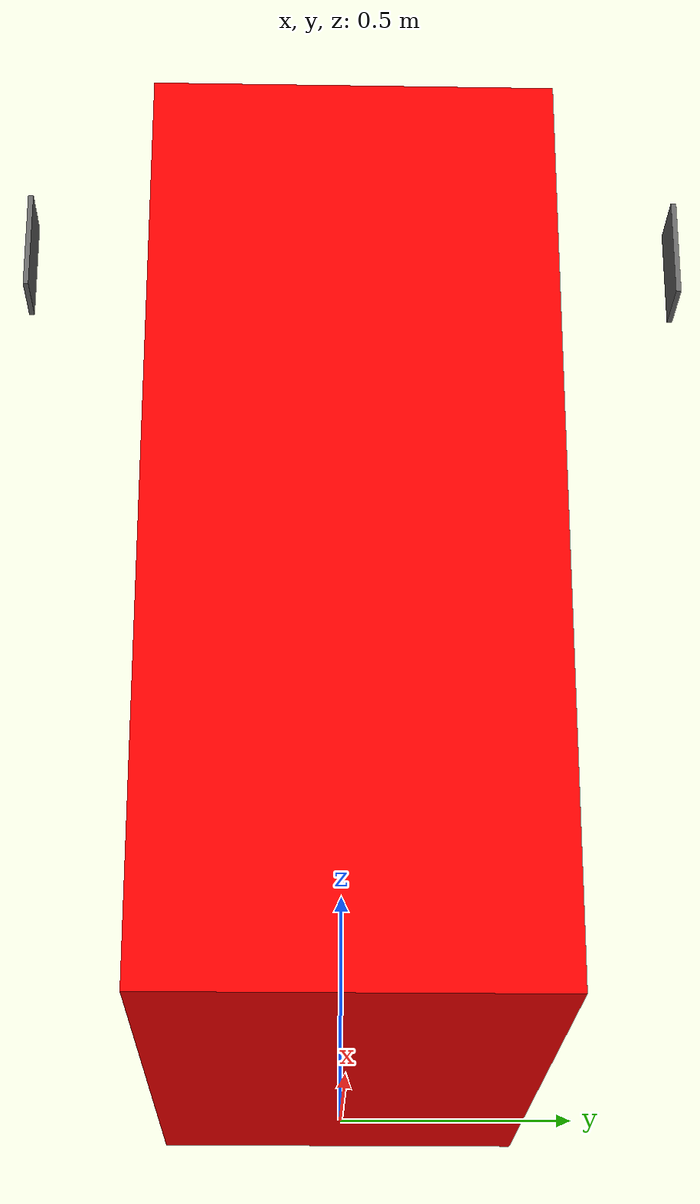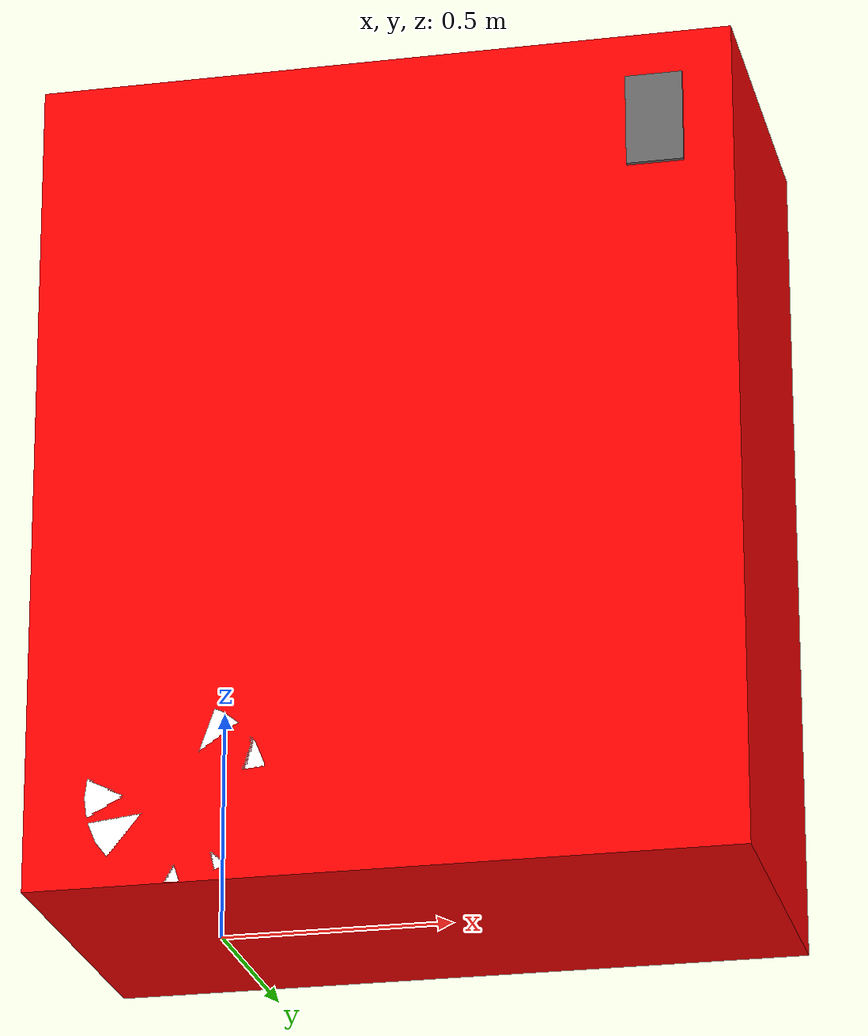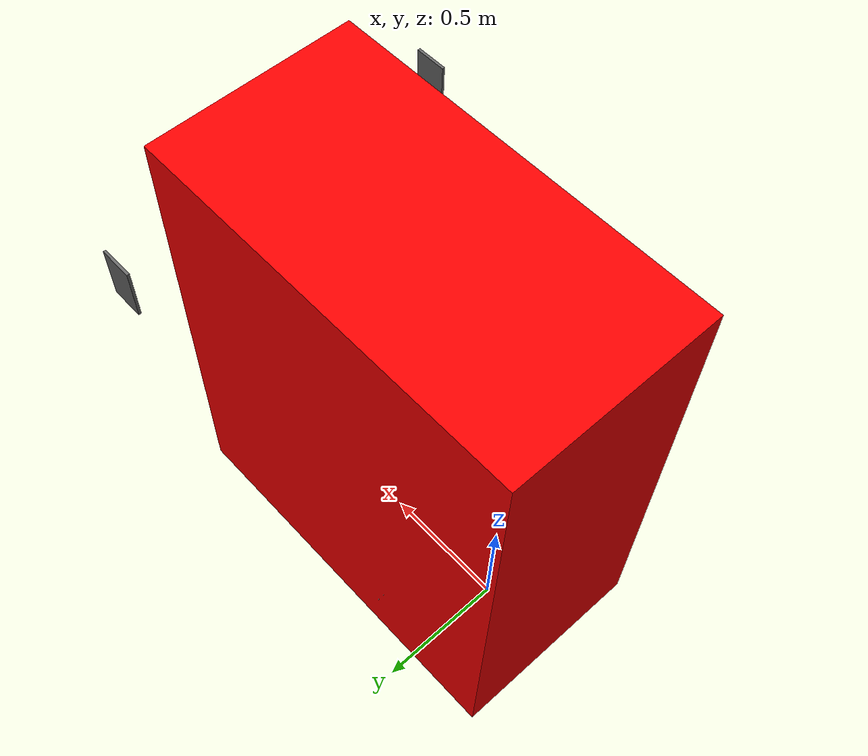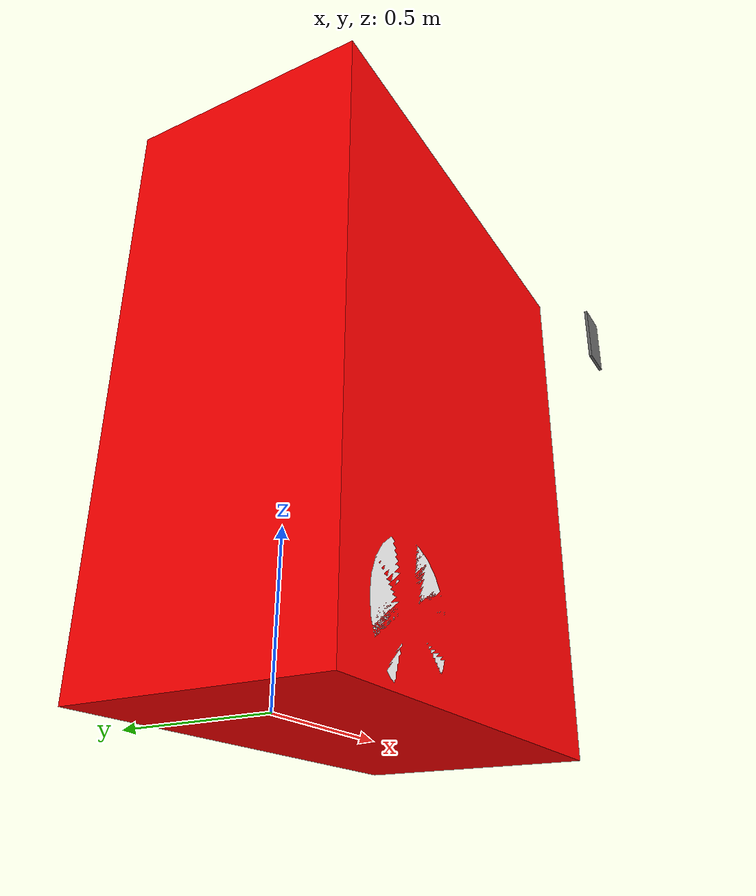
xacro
<?xml version="1.0"?>
<robot xmlns:xacro="http://ros.org/wiki/xacro" name="basic_mobile_bot">

  <xacro:property name="vehicle_info" value="${xacro.load_yaml('$(find autoware_towtruck_vehicle_description)/config/vehicle_info.param.yaml')}"/>

  <!-- geometric constants (m) -->
  <xacro:property name="body_length" value="1.52"/>
  <xacro:property name="body_width" value="0.79"/>
  <xacro:property name="body_height" value="1.83"/>
  <xacro:property name="body_x_centre" value="0.435"/>   <!-- (-rear_overhang + body_length/2) = -0.325 + 0.76 -->
  <xacro:property name="body_z_centre" value="0.915"/>   <!-- body box spans z = 0 .. 1.83 (absorbs 0.07 ground clearance) -->

  <xacro:property name="rear_wheel_radius" value="0.195"/>
  <xacro:property name="rear_wheel_width" value="0.095"/>
  <xacro:property name="rear_wheel_y" value="0.3475"/>   <!-- wheel_tread/2 = 0.695/2 -->

  <xacro:property name="front_wheel_radius" value="0.12"/>
  <xacro:property name="front_wheel_width" value="0.24"/>
  <xacro:property name="front_wheel_x" value="0.995"/>   <!-- wheel_base -->

  <xacro:property name="max_steer" value="0.9774"/>

  <!-- mirror geometry & placement -->
  <xacro:property name="mirror_x" value="0.12"/>
  <xacro:property name="mirror_y" value="0.01"/>
  <xacro:property name="mirror_z" value="0.20"/>
  <xacro:property name="mirror_centre_x" value="1.067"/>
  <xacro:property name="mirror_centre_y" value="0.635"/>
  <xacro:property name="mirror_centre_z" value="1.51"/>

  <link name="base_link"/>

  <!-- chassis (body box) -->
  <link name="chassis_link">
    <inertial>
      <origin xyz="0 0 0" rpy="0 0 0"/>
      <mass value="500.0"/>
      <inertia ixx="100.0" ixy="0.0" ixz="0.0" iyy="100.0" iyz="0.0" izz="100.0"/>
    </inertial>
    <visual>
      <origin xyz="0 0 0" rpy="0 0 0"/>
      <geometry>
        <box size="${body_length} ${body_width} ${body_height}"/>
      </geometry>
      <material name="Red">
        <color rgba="1.0 0.0 0.0 1.0"/>
      </material>
    </visual>
    <collision>
      <origin xyz="0 0 0" rpy="0 0 0"/>
      <geometry>
        <box size="${body_length} ${body_width} ${body_height}"/>
      </geometry>
    </collision>
  </link>

  <joint name="chassis_joint" type="fixed">
    <parent link="base_link"/>
    <child link="chassis_link"/>
    <origin xyz="${body_x_centre} 0 ${body_z_centre}" rpy="0 0 0"/>
  </joint>

  <!-- rear wheels (drive, no steering) -->
  <xacro:macro name="rear_wheel" params="prefix y_reflect">
    <link name="${prefix}_link">
      <visual>
        <origin xyz="0 0 0" rpy="${pi/2} 0 0"/>
        <geometry>
          <cylinder radius="${rear_wheel_radius}" length="${rear_wheel_width}"/>
        </geometry>
        <material name="White">
          <color rgba="1.0 1.0 1.0 1.0"/>
        </material>
      </visual>
    </link>

    <joint name="${prefix}_joint" type="continuous">
      <parent link="base_link"/>
      <child link="${prefix}_link"/>
      <origin xyz="0 ${y_reflect * rear_wheel_y} ${rear_wheel_radius}" rpy="0 0 0"/>
      <axis xyz="0 1 0"/>
    </joint>
  </xacro:macro>

  <xacro:rear_wheel prefix="drivewhl_l" y_reflect="1"/>
  <xacro:rear_wheel prefix="drivewhl_r" y_reflect="-1"/>

  <!-- front single (dual-modelled) steering wheel -->
  <link name="steering_link"/>

  <joint name="steering_joint" type="fixed">
    <parent link="base_link"/>
    <child link="steering_link"/>
    <origin xyz="${front_wheel_x} 0 ${front_wheel_radius}" rpy="0 0 0"/>
  </joint>

  <link name="front_steering_wheel_link">
    <visual>
      <origin xyz="0 0 0" rpy="${pi/2} 0 0"/>
      <geometry>
        <cylinder radius="${front_wheel_radius}" length="${front_wheel_width}"/>
      </geometry>
      <material name="White">
        <color rgba="1.0 1.0 1.0 1.0"/>
      </material>
    </visual>
  </link>

  <joint name="front_steering_wheel_joint" type="revolute">
    <parent link="steering_link"/>
    <child link="front_steering_wheel_link"/>
    <origin xyz="0 0 0" rpy="0 0 0"/>
    <limit upper="${max_steer}" lower="${-max_steer}" effort="10" velocity="1.0"/>
    <axis xyz="0 0 1"/>
  </joint>

  <!-- mirrors -->
  <xacro:macro name="mirror_panel" params="prefix y_reflect">
    <link name="${prefix}_link">
      <visual>
        <origin xyz="0 0 0" rpy="0 0 0"/>
        <geometry>
          <box size="${mirror_x} ${mirror_y} ${mirror_z}"/>
        </geometry>
        <material name="Grey">
          <color rgba="0.4 0.4 0.4 1.0"/>
        </material>
      </visual>
      <collision>
        <origin xyz="0 0 0" rpy="0 0 0"/>
        <geometry>
          <box size="${mirror_x} ${mirror_y} ${mirror_z}"/>
        </geometry>
      </collision>
    </link>

    <joint name="${prefix}_joint" type="fixed">
      <parent link="base_link"/>
      <child link="${prefix}_link"/>
      <!-- TODO verify mirror X — assumes mirror face aligns with sloped body front at mirror mid-height -->
      <origin xyz="${mirror_centre_x} ${y_reflect * mirror_centre_y} ${mirror_centre_z}" rpy="0 0 0"/>
    </joint>
  </xacro:macro>

  <xacro:mirror_panel prefix="mirror_left" y_reflect="1"/>
  <xacro:mirror_panel prefix="mirror_right" y_reflect="-1"/>

</robot>
